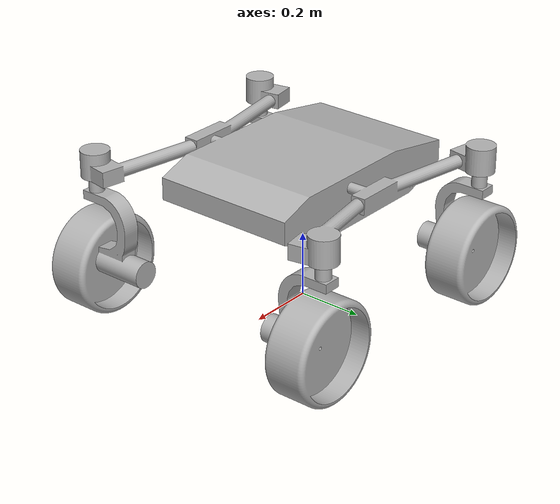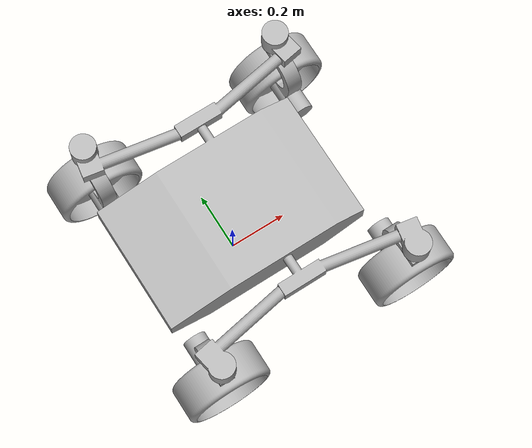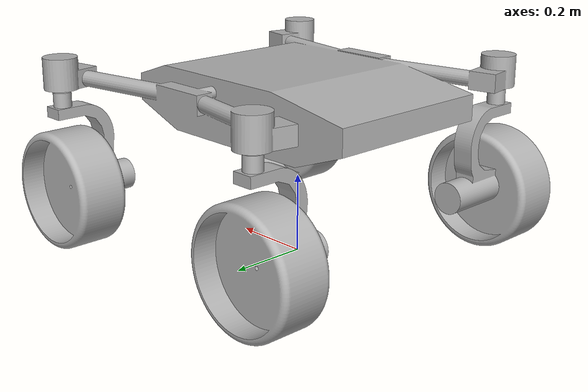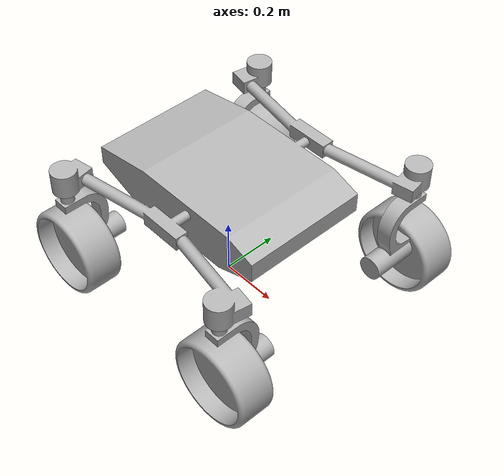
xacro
<?xml version="1.0" ?>
<robot name="ares8_rover" xmlns:xacro="http://www.ros.org/wiki/xacro">

<xacro:include filename="$(find ares8_rover_description)/urdf/materials.xacro" />
<xacro:include filename="$(find ares8_rover_description)/urdf/ares8_rover.trans" />
<xacro:include filename="$(find ares8_rover_description)/urdf/ares8_rover.gazebo" />
<link name="base_link">
  <inertial>
    <origin xyz="0.007393875774457437 -0.0009412649500128051 0.401095816100654" rpy="0 0 0"/>
    <mass value="368.1311417677187"/>
    <inertia ixx="10.647575" iyy="15.232701" izz="24.549912" ixy="-0.00709" iyz="0.0" ixz="-0.223263"/>
  </inertial>
  <visual>
    <origin xyz="0 0 0" rpy="0 0 0"/>
    <geometry>
      <mesh filename="file://$(find ares8_rover_description)/meshes/base_link.stl" scale="0.001 0.001 0.001"/>
    </geometry>
    <material name="silver"/>
  </visual>
  <collision>
    <origin xyz="0 0 0" rpy="0 0 0"/>
    <geometry>
      <mesh filename="file://$(find ares8_rover_description)/meshes/base_link.stl" scale="0.001 0.001 0.001"/>
    </geometry>
  </collision>
</link>

<link name="steering_link_lf_1">
  <inertial>
    <origin xyz="7.495130477469525e-05 -0.08530635234355655 -0.19524524560699147" rpy="0 0 0"/>
    <mass value="10.506662891210395"/>
    <inertia ixx="0.09858" iyy="0.077104" izz="0.028346" ixy="-1e-05" iyz="-0.019863" ixz="-5.6e-05"/>
  </inertial>
  <visual>
    <origin xyz="-0.419863 -0.406338 -0.411206" rpy="0 0 0"/>
    <geometry>
      <mesh filename="file://$(find ares8_rover_description)/meshes/steering_link_lf_1.stl" scale="0.001 0.001 0.001"/>
    </geometry>
    <material name="silver"/>
  </visual>
  <collision>
    <origin xyz="-0.419863 -0.406338 -0.411206" rpy="0 0 0"/>
    <geometry>
      <mesh filename="file://$(find ares8_rover_description)/meshes/steering_link_lf_1.stl" scale="0.001 0.001 0.001"/>
    </geometry>
  </collision>
</link>

<link name="steering_link_lb_1">
  <inertial>
    <origin xyz="7.587614450105251e-05 -0.08530635234351625 -0.19524524560699574" rpy="0 0 0"/>
    <mass value="10.506662891210395"/>
    <inertia ixx="0.09858" iyy="0.077104" izz="0.028346" ixy="-1e-05" iyz="-0.019863" ixz="-5.6e-05"/>
  </inertial>
  <visual>
    <origin xyz="0.290355 -0.406338 -0.411206" rpy="0 0 0"/>
    <geometry>
      <mesh filename="file://$(find ares8_rover_description)/meshes/steering_link_lb_1.stl" scale="0.001 0.001 0.001"/>
    </geometry>
    <material name="silver"/>
  </visual>
  <collision>
    <origin xyz="0.290355 -0.406338 -0.411206" rpy="0 0 0"/>
    <geometry>
      <mesh filename="file://$(find ares8_rover_description)/meshes/steering_link_lb_1.stl" scale="0.001 0.001 0.001"/>
    </geometry>
  </collision>
</link>

<link name="steering_link_rb_1">
  <inertial>
    <origin xyz="-7.505592811557493e-05 0.08530582244346485 -0.19524524560691126" rpy="0 0 0"/>
    <mass value="10.506662891210395"/>
    <inertia ixx="0.09858" iyy="0.077104" izz="0.028346" ixy="-1e-05" iyz="0.019863" ixz="5.6e-05"/>
  </inertial>
  <visual>
    <origin xyz="0.291489 0.40822 -0.411206" rpy="0 0 0"/>
    <geometry>
      <mesh filename="file://$(find ares8_rover_description)/meshes/steering_link_rb_1.stl" scale="0.001 0.001 0.001"/>
    </geometry>
    <material name="silver"/>
  </visual>
  <collision>
    <origin xyz="0.291489 0.40822 -0.411206" rpy="0 0 0"/>
    <geometry>
      <mesh filename="file://$(find ares8_rover_description)/meshes/steering_link_rb_1.stl" scale="0.001 0.001 0.001"/>
    </geometry>
  </collision>
</link>

<link name="steering_link_rf_1">
  <inertial>
    <origin xyz="-7.498076784201446e-05 0.08530582244346474 -0.19524524560690684" rpy="0 0 0"/>
    <mass value="10.506662891210395"/>
    <inertia ixx="0.09858" iyy="0.077104" izz="0.028346" ixy="-1e-05" iyz="0.019863" ixz="5.6e-05"/>
  </inertial>
  <visual>
    <origin xyz="-0.418728 0.40822 -0.411206" rpy="0 0 0"/>
    <geometry>
      <mesh filename="file://$(find ares8_rover_description)/meshes/steering_link_rf_1.stl" scale="0.001 0.001 0.001"/>
    </geometry>
    <material name="silver"/>
  </visual>
  <collision>
    <origin xyz="-0.418728 0.40822 -0.411206" rpy="0 0 0"/>
    <geometry>
      <mesh filename="file://$(find ares8_rover_description)/meshes/steering_link_rf_1.stl" scale="0.001 0.001 0.001"/>
    </geometry>
  </collision>
</link>

<link name="tire_LB_link_1">
  <inertial>
    <origin xyz="0.0007074324264990661 0.020604746349113967 -0.0004088190133060554" rpy="0 0 0"/>
    <mass value="6.0256098881699085"/>
    <inertia ixx="0.04508" iyy="0.078589" izz="0.04508" ixy="8.8e-05" iyz="-5.1e-05" ixz="-0.0"/>
  </inertial>
  <visual>
    <origin xyz="0.290355 -0.388613 -0.157306" rpy="0 0 0"/>
    <geometry>
      <mesh filename="file://$(find ares8_rover_description)/meshes/tire_LB_link_1.stl" scale="0.001 0.001 0.001"/>
    </geometry>
    <material name="silver"/>
  </visual>
  <collision>
    <origin xyz="0.290355 -0.388613 -0.157306" rpy="0 0 0"/>
    <geometry>
      <mesh filename="file://$(find ares8_rover_description)/meshes/tire_LB_link_1.stl" scale="0.001 0.001 0.001"/>
    </geometry>
  </collision>
</link>

<link name="tire_LF_link_1">
  <inertial>
    <origin xyz="0.0007065075867560555 0.02060474634907411 -0.0004088190133018088" rpy="0 0 0"/>
    <mass value="6.0256098881699085"/>
    <inertia ixx="0.04508" iyy="0.078589" izz="0.04508" ixy="8.8e-05" iyz="-5.1e-05" ixz="-0.0"/>
  </inertial>
  <visual>
    <origin xyz="-0.419863 -0.388613 -0.157306" rpy="0 0 0"/>
    <geometry>
      <mesh filename="file://$(find ares8_rover_description)/meshes/tire_LF_link_1.stl" scale="0.001 0.001 0.001"/>
    </geometry>
    <material name="silver"/>
  </visual>
  <collision>
    <origin xyz="-0.419863 -0.388613 -0.157306" rpy="0 0 0"/>
    <geometry>
      <mesh filename="file://$(find ares8_rover_description)/meshes/tire_LF_link_1.stl" scale="0.001 0.001 0.001"/>
    </geometry>
  </collision>
</link>

<link name="tire_RB_link_1">
  <inertial>
    <origin xyz="0.0007077255242637914 -0.020603557729272193 -0.00040885359117279196" rpy="0 0 0"/>
    <mass value="6.025601976962255"/>
    <inertia ixx="0.045081" iyy="0.078589" izz="0.04508" ixy="-8.8e-05" iyz="5.1e-05" ixz="-0.0"/>
  </inertial>
  <visual>
    <origin xyz="0.291489 0.390495 -0.157306" rpy="0 0 0"/>
    <geometry>
      <mesh filename="file://$(find ares8_rover_description)/meshes/tire_RB_link_1.stl" scale="0.001 0.001 0.001"/>
    </geometry>
    <material name="silver"/>
  </visual>
  <collision>
    <origin xyz="0.291489 0.390495 -0.157306" rpy="0 0 0"/>
    <geometry>
      <mesh filename="file://$(find ares8_rover_description)/meshes/tire_RB_link_1.stl" scale="0.001 0.001 0.001"/>
    </geometry>
  </collision>
</link>

<link name="tire_RF_link_1">
  <inertial>
    <origin xyz="-0.0007069269049217453 -0.020603557729271915 0.00040895944702001863" rpy="0 0 0"/>
    <mass value="6.025601976962255"/>
    <inertia ixx="0.045081" iyy="0.078589" izz="0.04508" ixy="8.8e-05" iyz="-5.1e-05" ixz="-0.0"/>
  </inertial>
  <visual>
    <origin xyz="-0.418728 0.390495 -0.157306" rpy="0 0 0"/>
    <geometry>
      <mesh filename="file://$(find ares8_rover_description)/meshes/tire_RF_link_1.stl" scale="0.001 0.001 0.001"/>
    </geometry>
    <material name="silver"/>
  </visual>
  <collision>
    <origin xyz="-0.418728 0.390495 -0.157306" rpy="0 0 0"/>
    <geometry>
      <mesh filename="file://$(find ares8_rover_description)/meshes/tire_RF_link_1.stl" scale="0.001 0.001 0.001"/>
    </geometry>
  </collision>
</link>

<joint name="lf_str" type="continuous">
  <origin xyz="0.419863 0.406338 0.411206" rpy="0 0 0"/>
  <parent link="base_link"/>
  <child link="steering_link_lf_1"/>
  <axis xyz="0.0 -0.0 -1.0"/>
</joint>

<joint name="lb_str" type="continuous">
  <origin xyz="-0.290355 0.406338 0.411206" rpy="0 0 0"/>
  <parent link="base_link"/>
  <child link="steering_link_lb_1"/>
  <axis xyz="-0.0 0.0 1.0"/>
</joint>

<joint name="rb_str" type="continuous">
  <origin xyz="-0.291489 -0.40822 0.411206" rpy="0 0 0"/>
  <parent link="base_link"/>
  <child link="steering_link_rb_1"/>
  <axis xyz="0.0 -0.0 -1.0"/>
</joint>

<joint name="rf_str" type="continuous">
  <origin xyz="0.418728 -0.40822 0.411206" rpy="0 0 0"/>
  <parent link="base_link"/>
  <child link="steering_link_rf_1"/>
  <axis xyz="-0.0 0.0 1.0"/>
</joint>

<joint name="lb_tire" type="continuous">
  <origin xyz="0.0 -0.017725 -0.2539" rpy="0 0 0"/>
  <parent link="steering_link_lb_1"/>
  <child link="tire_LB_link_1"/>
  <axis xyz="0.0 1.0 -0.0"/>
</joint>

<joint name="lf_tire" type="continuous">
  <origin xyz="0.0 -0.017725 -0.2539" rpy="0 0 0"/>
  <parent link="steering_link_lf_1"/>
  <child link="tire_LF_link_1"/>
  <axis xyz="-0.0 1.0 -0.0"/>
</joint>

<joint name="rb_tire" type="continuous">
  <origin xyz="0.0 0.017725 -0.2539" rpy="0 0 0"/>
  <parent link="steering_link_rb_1"/>
  <child link="tire_RB_link_1"/>
  <axis xyz="0.0 -1.0 0.0"/>
</joint>

<joint name="rf_tire" type="continuous">
  <origin xyz="0.0 0.017725 -0.2539" rpy="0 0 0"/>
  <parent link="steering_link_rf_1"/>
  <child link="tire_RF_link_1"/>
  <axis xyz="0.0 -1.0 0.0"/>
</joint>

</robot>

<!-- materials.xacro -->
<robot name="ares8_rover" xmlns:xacro="http://www.ros.org/wiki/xacro" >

<material name="silver">
  <color rgba="0.700 0.700 0.700 1.000"/>
</material>

</robot>
